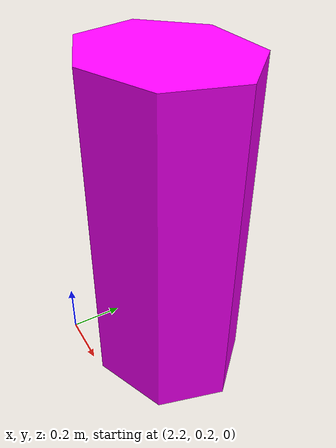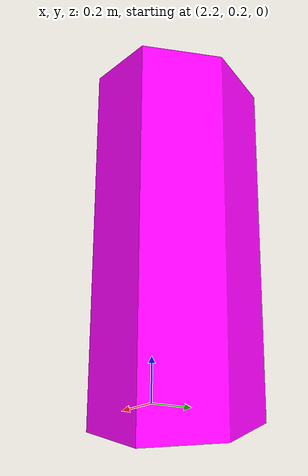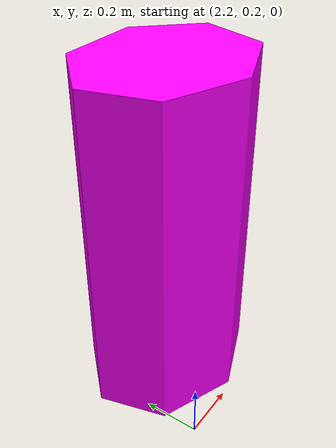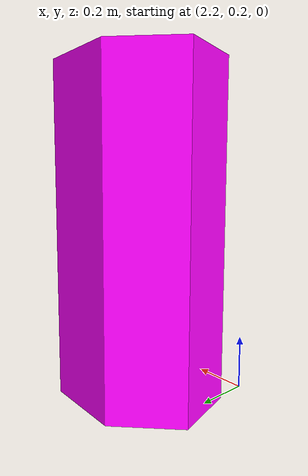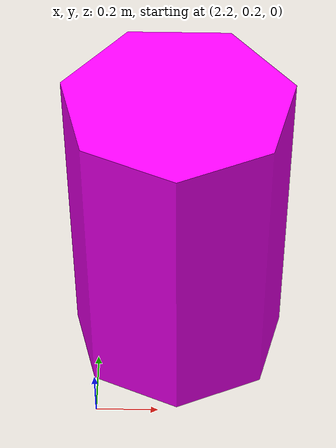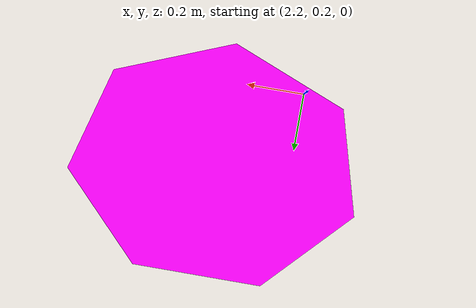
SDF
<?xml version="1.0" ?>
<sdf version="1.5">

  <model name="obstacle_5">
  <static>true</static>
  <link name="link">
    <pose>0.37 12.5 0 0 0 0</pose>
    <collision name="collision">
      <geometry>
        <mesh>
          <uri>model://obstacle_5/mesh/obstacle_5.stl</uri>
          <scale>0.9 0.9 0.1</scale>
        </mesh>
      </geometry>
    </collision>
    <visual name="visual">
      <cast_shadows>true</cast_shadows>
      <geometry>
        <mesh>
          <uri>model://obstacle_5/mesh/obstacle_5.stl</uri>
          <scale>0.9 0.9 0.1</scale>
        </mesh>
      </geometry>
      <material>
        <ambient>1 0 1 1</ambient>
        <diffuse>1 0 1 1</diffuse>
        <specular>0 0 0 0</specular>
      </material>
    </visual>
  </link>
</model>
</sdf>
